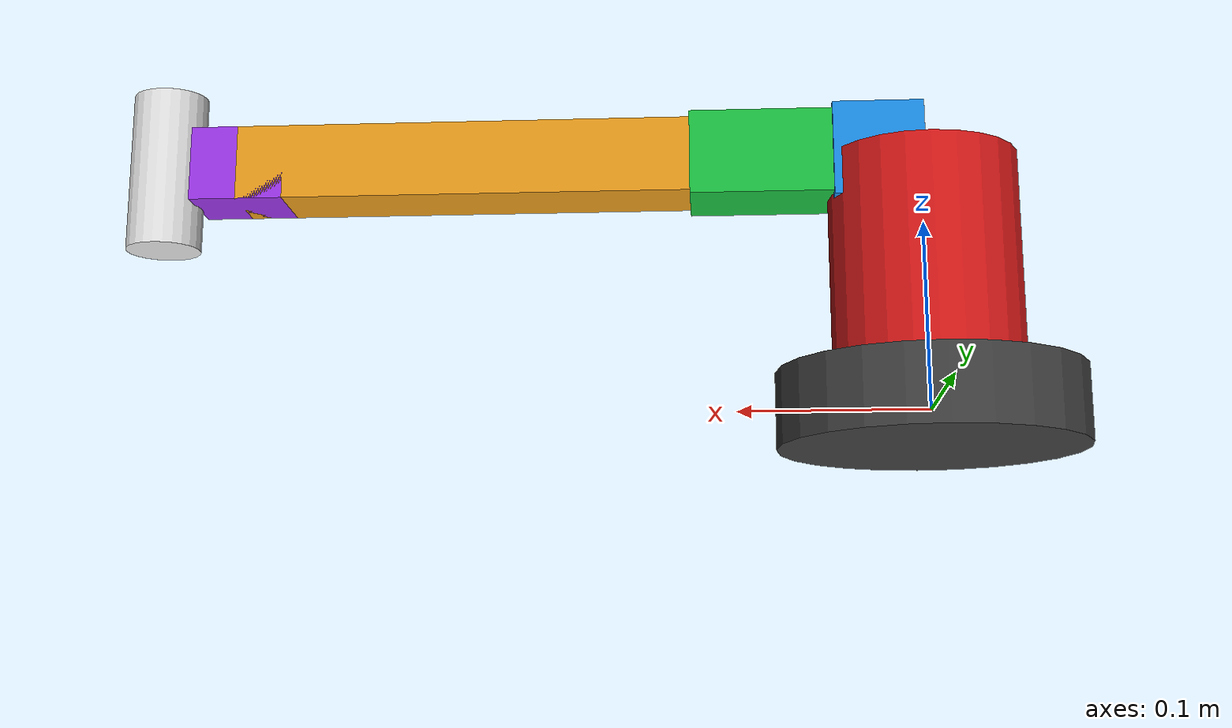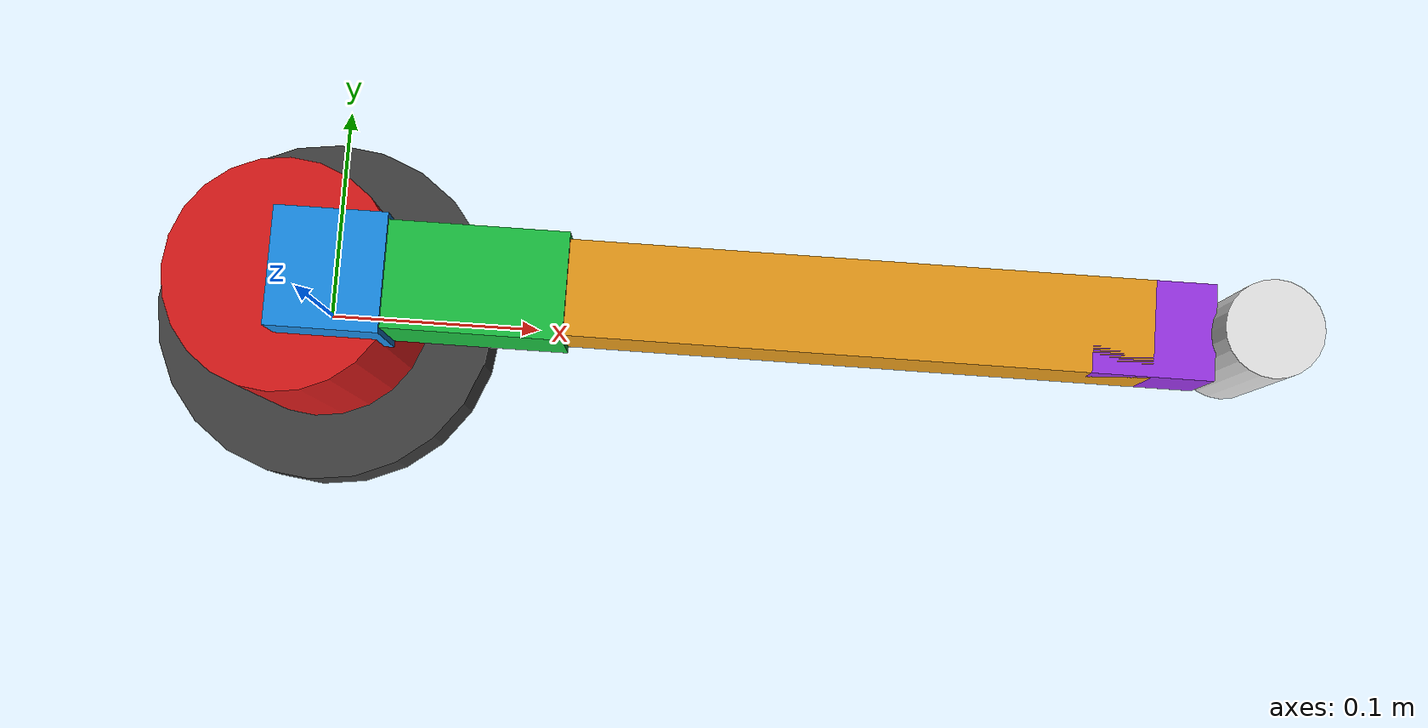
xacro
<?xml version="1.0"?>
<robot name="five_dof_cobot_rollJ4" xmlns:xacro="http://www.ros.org/wiki/xacro">

  <!-- =========================
       🔧 사용자 입력 파라미터 모음
       ========================= -->
  <!-- 링크 길이/오프셋 (m) -->
  <xacro:property name="L1" value="0.13461"/>   <!-- base->link1 z높이 --> <!-- BASE에서 MAIN SHAFT 134.61mm -->
  <xacro:property name="L2" value="0.0475"/>    <!-- link1->link2 길이 --> <!-- 1번축 종동축 - main shaft 47.5 mm -->
  <xacro:property name="L3" value="0.075"/>     <!-- link2->link3 길이 --> <!-- Main shaft - 다음 shaft 75mm -->
  <xacro:property name="L4" value="0.24168"/>   <!-- 손목 하우징 길이(선택) --> <!-- 다음 shaft - 그리퍼 부분 기어 중심까지 거리 123mm (※ 수치 확인 필요) -->
  <xacro:property name="TOOL" value="0.08597"/> <!-- EE 플랜지~툴팁 오프셋 --> <!-- 그리퍼 부분 기어 중심 - 그리퍼 끝단 까지 거리 85.97mm -->

  <!-- 질량 (kg)  🔴실측으로 교체 -->
  <xacro:property name="m1" value="3.183"/>  <!-- 🔴FILL -->
  <xacro:property name="m2" value="0.230"/>  <!-- 🔴FILL -->
  <xacro:property name="m3" value="0.400"/>  <!-- 🔴FILL -->
  <xacro:property name="m4" value="0.200"/>  <!-- 🔴FILL -->
  <xacro:property name="m5" value="0.100"/>  <!-- 🔴FILL -->

  <!-- 관성(대각성분) [kg·m^2] : 간이값/실측치로 교체 -->
  <!-- 🔴 아래 값은 "예시" 수준이므로 반드시 현실적인 값으로 바꾸세요 -->
  <xacro:property name="Ixx1" value="0.020"/> <xacro:property name="Iyy1" value="0.040"/> <xacro:property name="Izz1" value="0.060"/> <!-- 🔴FILL -->
  <xacro:property name="Ixx2" value="0.010"/> <xacro:property name="Iyy2" value="0.030"/> <xacro:property name="Izz2" value="0.050"/> <!-- 🔴FILL -->
  <xacro:property name="Ixx3" value="0.002"/> <xacro:property name="Iyy3" value="0.020"/> <xacro:property name="Izz3" value="0.010"/> <!-- 🔴FILL -->
  <xacro:property name="Ixx4" value="0.001"/> <xacro:property name="Iyy4" value="0.030"/> <xacro:property name="Izz4" value="0.002"/> <!-- 🔴FILL -->
  <xacro:property name="Ixx5" value="0.0002"/> <xacro:property name="Iyy5" value="0.0002"/> <xacro:property name="Izz5" value="0.0002"/> <!-- 🔴FILL -->

  <!-- 조인트 제한(라디안/초·N·m)
       🔴 지금은 RViz/MoveIt에서 정상 동작하기 위한 "현실적인 기본값"으로 설정
       (무한회전이면 continuous로 바꾸는 게 정석) -->
  <xacro:property name="j1_lower" value="-3.14159"/> <xacro:property name="j1_upper" value="3.14159"/> <xacro:property name="j1_vel" value="2.5"/>
  <xacro:property name="j2_lower" value="-2.61799"/> <xacro:property name="j2_upper" value="2.61799"/> <xacro:property name="j2_vel" value="2.5"/>
  <xacro:property name="j3_lower" value="-2.61799"/> <xacro:property name="j3_upper" value="2.61799"/> <xacro:property name="j3_vel" value="2.5"/>
  <xacro:property name="j4_lower" value="-3.14159"/> <xacro:property name="j4_upper" value="3.14159"/> <xacro:property name="j4_vel" value="2.5"/>
  <xacro:property name="j5_lower" value="-2.61799"/> <xacro:property name="j5_upper" value="2.61799"/> <xacro:property name="j5_vel" value="2.5"/>

  <!-- 구동부/감속비(문서화/제어용) 🔴 실 스펙으로 교체 -->
  <xacro:property name="belt_type" value="2GT-5mm"/>
  <xacro:property name="gear_ratio_j1" value="3"/>   <!-- 🔴FILL -->
  <xacro:property name="gear_ratio_j2" value="4"/>   <!-- 🔴FILL -->
  <xacro:property name="gear_ratio_j3" value="40"/>  <!-- 🔴FILL -->
  <xacro:property name="gear_ratio_j4" value="3"/>   <!-- 🔴FILL -->
  <xacro:property name="gear_ratio_j5" value="3"/>   <!-- 🔴FILL -->

  <!-- 링크 색상(Material) -->
  <material name="mat_base"><color rgba="0.25 0.25 0.25 1.0"/></material>
  <material name="mat_l1"><color rgba="0.85 0.10 0.10 1.0"/></material>
  <material name="mat_l2"><color rgba="0.10 0.55 0.90 1.0"/></material>
  <material name="mat_l3"><color rgba="0.10 0.75 0.25 1.0"/></material>
  <material name="mat_l4"><color rgba="0.90 0.60 0.10 1.0"/></material>
  <material name="mat_l5"><color rgba="0.60 0.20 0.90 1.0"/></material>
  <material name="mat_ee"><color rgba="0.90 0.90 0.90 1.0"/></material>

  <!-- ========== 링크 정의 ========== -->
  <link name="base_link">
    <visual>
      <geometry><cylinder radius="0.08" length="0.04"/></geometry>
      <material name="mat_base"/>
    </visual>
    <collision>
      <geometry><cylinder radius="0.08" length="0.04"/></geometry>
    </collision>
    <inertial>
      <origin xyz="0 0 0" rpy="0 0 0"/>
      <mass value="4.113"/> <!-- 🔴FILL -->
      <inertia ixx="0.0332" iyy="0.12002" izz="0.12021" ixy="0" ixz="0" iyz="0"/> <!-- 🔴FILL -->
    </inertial>
  </link>

  <link name="link1">
    <visual>
      <origin xyz="0 0 ${L1/2}" rpy="0 0 0"/>
      <geometry><cylinder radius="0.05" length="${L1}"/></geometry>
      <material name="mat_l1"/>
    </visual>
    <collision>
      <origin xyz="0 0 ${L1/2}" rpy="0 0 0"/>
      <geometry><cylinder radius="0.05" length="${L1}"/></geometry>
    </collision>
    <inertial>
      <origin xyz="0 0 ${L1/2}" rpy="0 0 0"/>
      <mass value="${m1}"/>
      <inertia ixx="${Ixx1}" iyy="${Iyy1}" izz="${Izz1}" ixy="0" ixz="0" iyz="0"/>
    </inertial>
  </link>

  <link name="link2">
    <visual>
      <origin xyz="${L2/2} 0 0" rpy="0 0 0"/>
      <geometry><box size="${L2} 0.05 0.05"/></geometry>
      <material name="mat_l2"/>
    </visual>
    <collision>
      <origin xyz="${L2/2} 0 0" rpy="0 0 0"/>
      <geometry><box size="${L2} 0.05 0.05"/></geometry>
    </collision>
    <inertial>
      <origin xyz="${L2/2} 0 0" rpy="0 0 0"/>
      <mass value="${m2}"/>
      <inertia ixx="${Ixx2}" iyy="${Iyy2}" izz="${Izz2}" ixy="0" ixz="0" iyz="0"/>
    </inertial>
  </link>

  <link name="link3">
    <visual>
      <origin xyz="${L3/2} 0 0" rpy="0 0 0"/>
      <geometry><box size="${L3} 0.045 0.045"/></geometry>
      <material name="mat_l3"/>
    </visual>
    <collision>
      <origin xyz="${L3/2} 0 0" rpy="0 0 0"/>
      <geometry><box size="${L3} 0.045 0.045"/></geometry>
    </collision>
    <inertial>
      <origin xyz="${L3/2} 0 0" rpy="0 0 0"/>
      <mass value="${m3}"/>
      <inertia ixx="${Ixx3}" iyy="${Iyy3}" izz="${Izz3}" ixy="0" ixz="0" iyz="0"/>
    </inertial>
  </link>

  <link name="link4">
    <visual>
      <origin xyz="${L4/2} 0 0" rpy="0 0 0"/>
      <geometry><box size="${L4} 0.04 0.04"/></geometry>
      <material name="mat_l4"/>
    </visual>
    <collision>
      <origin xyz="${L4/2} 0 0" rpy="0 0 0"/>
      <geometry><box size="${L4} 0.04 0.04"/></geometry>
    </collision>
    <inertial>
      <origin xyz="${L4/2} 0 0" rpy="0 0 0"/>
      <mass value="${m4}"/>
      <inertia ixx="${Ixx4}" iyy="${Iyy4}" izz="${Izz4}" ixy="0" ixz="0" iyz="0"/>
    </inertial>
  </link>

  <link name="link5">
    <visual>
      <origin xyz="0 0 0" rpy="0 0 0"/>
      <geometry><box size="0.05 0.04 0.04"/></geometry>
      <material name="mat_l5"/>
    </visual>
    <collision>
      <origin xyz="0 0 0" rpy="0 0 0"/>
      <geometry><box size="0.05 0.04 0.04"/></geometry>
    </collision>
    <inertial>
      <origin xyz="0 0 0" rpy="0 0 0"/>
      <mass value="${m5}"/>
      <inertia ixx="${Ixx5}" iyy="${Iyy5}" izz="${Izz5}" ixy="0" ixz="0" iyz="0"/>
    </inertial>
  </link>

  <link name="ee_link">
    <visual>
      <origin xyz="${TOOL/2} 0 0" rpy="0 0 0"/>
      <geometry><cylinder radius="0.02" length="${TOOL}"/></geometry>
      <material name="mat_ee"/>
    </visual>
    <collision>
      <origin xyz="${TOOL/2} 0 0" rpy="0 0 0"/>
      <geometry><cylinder radius="0.02" length="${TOOL}"/></geometry>
    </collision>
  </link>

  <!-- ========== 조인트 정의 (축 방향 고정) ========== -->
  <!-- J1: Base Yaw (좌우 회전, z축) -->
  <joint name="joint1_base_yaw" type="revolute">
    <parent link="base_link"/><child link="link1"/>
    <origin xyz="0 0 0" rpy="0 0 0"/>
    <axis xyz="0 0 1"/>
    <limit lower="${j1_lower}" upper="${j1_upper}" velocity="${j1_vel}" effort="101.2"/> <!-- 🔴FILL -->
  </joint>

  <!-- J2: Shoulder Pitch (위/아래, y축) -->
  <joint name="joint2_shoulder_pitch" type="revolute">
    <parent link="link1"/><child link="link2"/>
    <origin xyz="0 0 ${L1}" rpy="0 0 0"/>
    <axis xyz="0 1 0"/>
    <limit lower="${j2_lower}" upper="${j2_upper}" velocity="${j2_vel}" effort="33.6"/> <!-- 🔴FILL -->
  </joint>

  <!-- J3: Elbow Pitch (위/아래, y축) -->
  <joint name="joint3_elbow_pitch" type="revolute">
    <parent link="link2"/><child link="link3"/>
    <origin xyz="${L2} 0 0" rpy="0 0 0"/>
    <axis xyz="0 1 0"/>
    <limit lower="${j3_lower}" upper="${j3_upper}" velocity="${j3_vel}" effort="33.6"/> <!-- 🔴FILL -->
  </joint>

  <!-- ✅ J4: Wrist ROLL (비틀기, x축) -->
  <joint name="joint4_wrist_roll" type="revolute">
    <parent link="link3"/><child link="link4"/>
    <origin xyz="${L3} 0 0" rpy="0 0 0"/>
    <axis xyz="1 0 0"/>
    <limit lower="${j4_lower}" upper="${j4_upper}" velocity="${j4_vel}" effort="33.6"/> <!-- 🔴FILL -->
  </joint>

  <!-- J5: Wrist Pitch (위/아래, y축) -->
  <joint name="joint5_wrist_pitch" type="revolute">
    <parent link="link4"/><child link="link5"/>
    <origin xyz="${L4} 0 0" rpy="0 0 0"/>
    <axis xyz="0 1 0"/>
    <limit lower="${j5_lower}" upper="${j5_upper}" velocity="${j5_vel}" effort="25.2"/> <!-- 🔴FILL -->
  </joint>

  <!-- EE 고정 -->
  <joint name="joint_ee_fixed" type="fixed">
    <parent link="link5"/><child link="ee_link"/>
    <origin xyz="0 0 0" rpy="0 0 0"/>
  </joint>

  <!-- (선택) ros2_control용 transmission/ros2_control 블록은 실제 구동 스펙 확정 후 추가 -->
</robot>
